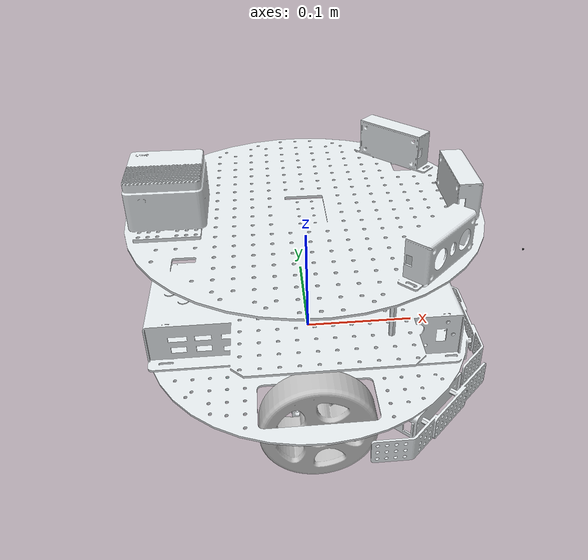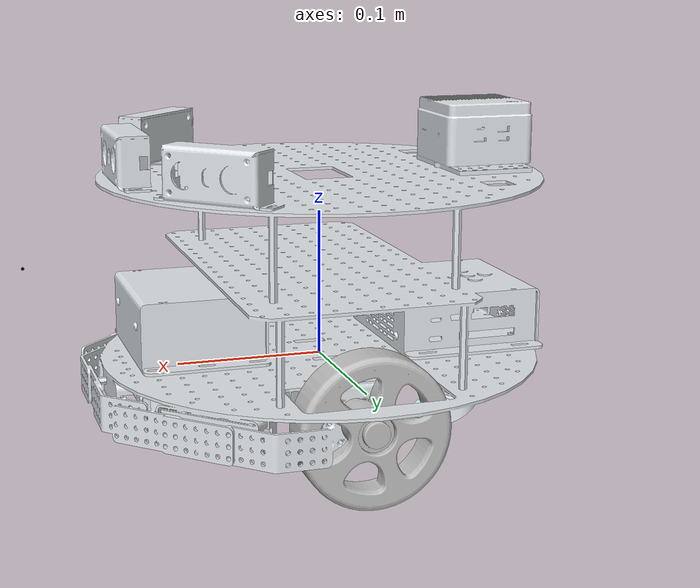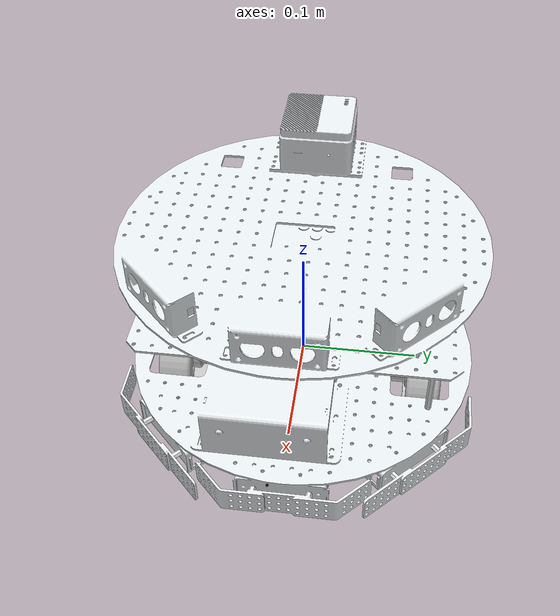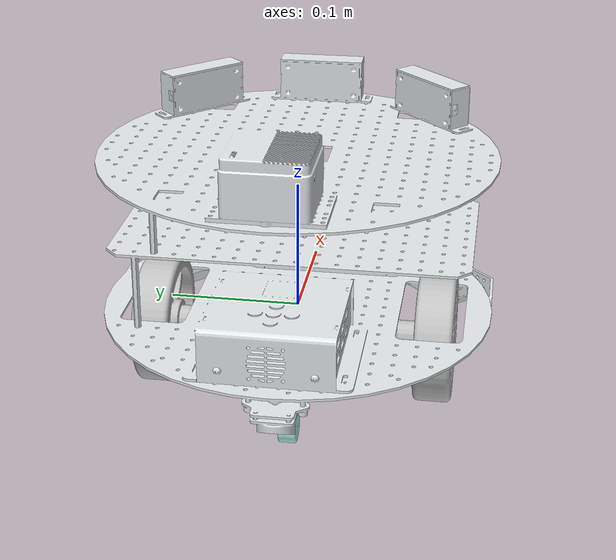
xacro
<?xml version="1.0"?>

<robot name="w2" xmlns:xacro="http://www.ros.org/wiki/xacro">

    <xacro:include filename="$(find upros_description)/xacro/w2_body.xacro" />
    <xacro:include filename="$(find upros_description)/xacro/depth_camera.xacro" />
    <xacro:include filename="$(find upros_description)/xacro/diff_drive_controller.xacro" />

    <xacro:w2_body />
    <xacro:depth_camera prefix="camera"/>
    <xacro:differential_drive_controller />

</robot>

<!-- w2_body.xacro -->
<robot xmlns:xacro="http://www.ros.org/wiki/xacro" name="w2_body">

    <xacro:macro name="w2_body">

        <link name="base_footprint">
        </link>

        <link name="base_link">
            <inertial>
                <origin xyz="-0.00183994912012901 0.000718384784481402 0.040896257051146"
                    rpy="0 0 0" />
                <mass value="2.11446326748896" />
                <inertia ixx="0.0172522550977486" ixy="0.000112962512291742"
                    ixz="0.00215471233797688"
                    iyy="0.0214703513066925" iyz="-3.60344762320202E-05" izz="0.0232865128652866" />
            </inertial>
            <visual>
                <origin xyz="0 0 0" rpy="0 0 0" />
                <geometry>
                    <mesh filename="package://upros_description/meshes/W2C/base_link.STL" />
                </geometry>
                <material name="">
                    <color rgba="0.898039215686275 0.917647058823529 0.929411764705882 1" />
                </material>
            </visual>
            <collision>
                <origin xyz="0 0 0" rpy="0 0 0" />
                <geometry>
                    <mesh filename="package://upros_description/meshes/W2C/base_link.STL" />
                </geometry>
            </collision>
        </link>
        <joint name="base_footprint_joint" type="fixed">
            <parent link="base_footprint" />
            <child link="base_link" />
        </joint>

        <link name="wheel_L_link">
            <inertial>
                <origin xyz="-3.78770996320736E-07 -0.013414250594195 4.81266645289274E-07"
                    rpy="0 0 0" />
                <mass value="0.337836569375269" />
                <inertia ixx="0.000278270805900081" ixy="1.29138084160578E-09"
                    ixz="1.09699819030228E-09" iyy="0.000496405737651082"
                    iyz="-1.64156177606385E-09"
                    izz="0.000278271727426874" />
            </inertial>
            <visual>
                <origin xyz="0 0 0" rpy="0 0 0" />
                <geometry>
                    <mesh filename="package://upros_description/meshes/W2C/wheel_L_link.STL" />
                </geometry>
                <material name="">
                    <color rgba="0.752941176470588 0.752941176470588 0.752941176470588 1" />
                </material>
            </visual>
            <collision>
                <origin xyz="0 0 0" rpy="0 0 0" />
                <geometry>
                    <mesh filename="package://upros_description/meshes/W2C/wheel_L_link.STL" />
                </geometry>
            </collision>
        </link>
        <joint name="wheel_L_joint" type="continuous">
            <origin xyz="0 0.1215 -0.02" rpy="0 0 0" />
            <parent link="base_link" />
            <child link="wheel_L_link" />
            <axis xyz="0 1 0" />
        </joint>

        <link name="wheel_R_link">
            <inertial>
                <origin xyz="-5.54575135339762E-07 0.013414250594195 2.59868179624395E-07"
                    rpy="0 0 0" />
                <mass value="0.337836569375269" />
                <inertia ixx="0.000278271195902002" ixy="-1.89148049635397E-09"
                    ixz="1.18772924132671E-09" iyy="0.000496405737651082" iyz="8.85827903470683E-10"
                    izz="0.000278271337424954" />
            </inertial>
            <visual>
                <origin xyz="0 0 0" rpy="0 0 0" />
                <geometry>
                    <mesh filename="package://upros_description/meshes/W2C/wheel_R_link.STL" />
                </geometry>
                <material name="">
                    <color rgba="0.752941176470588 0.752941176470588 0.752941176470588 1" />
                </material>
            </visual>
            <collision>
                <origin xyz="0 0 0" rpy="0 0 0" />
                <geometry>
                    <mesh filename="package://upros_description/meshes/W2C/wheel_R_link.STL" />
                </geometry>
            </collision>
        </link>
        <joint name="wheel_R_joint" type="continuous">
            <origin xyz="0 -0.1215 -0.02" rpy="0 0 0" />
            <parent link="base_link" />
            <child link="wheel_R_link" />
            <axis xyz="0 1 0" />
        </joint>

        <link name="front_Link">
            <inertial>
                <origin xyz="0 0 0" rpy="0 0 0" />
                <mass value="0.0063074121665526" />
                <inertia ixx="3.34755925557046E-07" ixy="-1.45392467961487E-22"
                    ixz="2.42001994301979E-24" iyy="4.93530086138426E-07" iyz="6.44209161389679E-25"
                    izz="3.34755925557046E-07" />
            </inertial>
            <visual>
                <origin xyz="0 0 0" rpy="0 0 0" />
                <geometry>
                    <mesh filename="package://upros_description/meshes/W2C/wheel_B_Link.STL" />
                </geometry>
                <material name="">
                    <color rgba="0.752941176470588 1 1 1" />
                </material>
            </visual>
            <collision>
                <origin xyz="0 0 0" rpy="0 0 0" />
                <geometry>
                    <mesh filename="package://upros_description/meshes/W2C/wheel_B_Link.STL" />
                </geometry>
            </collision>
        </link>
        <joint name="front_joint" type="continuous">
            <origin xyz="0.0859999999999999 0 -0.0575" rpy="0 0 0" />
            <parent link="base_link" />
            <child link="front_Link" />
            <axis xyz="1 1 1" />
        </joint>

        <link name="back_Link">
            <inertial>
                <origin xyz="0 0 0" rpy="0 0 0" />
                <mass value="0.0063074121665526" />
                <inertia ixx="3.34755925557046E-07" ixy="-1.45392467961487E-22"
                    ixz="2.42001994301979E-24" iyy="4.93530086138426E-07" iyz="6.4420916138968E-25"
                    izz="3.34755925557046E-07" />
            </inertial>
            <visual>
                <origin xyz="0 0 0" rpy="0 0 0" />
                <geometry>
                    <mesh filename="package://upros_description/meshes/W2C/wheel_A_Link.STL" />
                </geometry>
                <material name="">
                    <color rgba="0.752941176470588 1 1 1" />
                </material>
            </visual>
            <collision>
                <origin xyz="0 0 0" rpy="0 0 0" />
                <geometry>
                    <mesh filename="package://upros_description/meshes/W2C/wheel_A_Link.STL" />
                </geometry>
            </collision>
        </link>
        <joint name="back_joint" type="continuous">
            <origin xyz="-0.0859999999999998 0 -0.0575" rpy="0 0 0" />
            <parent link="base_link" />
            <child link="back_Link" />
            <axis xyz="1 1 1" />
        </joint>

    </xacro:macro>

</robot>

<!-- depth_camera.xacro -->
<robot name="depth_camera" xmlns:xacro="http://wiki.ros.org/xacro">

  <!-- 定义相机的基本参数 -->
  <xacro:property name="camera_name" value="camera" />
  <xacro:property name="camera_radius" value="0.001" />
  <xacro:property name="camera_height" value="0.073" />
  <xacro:property name="camera_front" value="0.20" />
  <xacro:property name="horizontal_fov" value="${60.0*3.141592653589793/180.0}" />
  <xacro:property name="image_width" value="640" />
  <xacro:property name="image_height" value="480" />
  <xacro:property name="near_clip" value="0.05" />
  <xacro:property name="far_clip" value="8.0" />
  <xacro:property name="update_rate" value="20.0" />

  <!-- 定义相机的宏 -->
  <xacro:macro name="depth_camera" params="prefix">

    <!-- 声明一个相机的link -->
    <link name="${prefix}_link">
      <visual>
        <geometry>
          <sphere radius="${camera_radius}" />
        </geometry>
        <origin xyz="0 0 0" rpy="0 0 0" />
        <material name="black">
          <color rgba="0 0 0 1" />
        </material>
      </visual>
      <collision>
        <geometry>
          <sphere radius="${camera_radius}" />
        </geometry>
      </collision>
    </link>

    <!-- 相机link与base_link的关节描述 -->
    <joint name="${prefix}_joint" type="fixed">
      <parent link="base_link" />
      <child link="${prefix}_link" />
      <origin xyz="${camera_front} 0 ${camera_height}" rpy="0 0 0" />
    </joint>

    <!-- 相机的gazebo驱动描述 -->
    <gazebo reference="${prefix}_link">
      <sensor type="depth" name="${prefix}">
        <always_on>true</always_on>
        <visualize>false</visualize>
        <update_rate>${update_rate}</update_rate>
        <camera>
          <horizontal_fov>${horizontal_fov}</horizontal_fov>
          <image>
            <width>${image_width}</width>
            <height>${image_height}</height>
            <format>R8G8B8</format>
          </image>
          <clip>
            <near>${near_clip}</near>
            <far>${far_clip}</far>
          </clip>
        </camera>
        <!--plugin为ROS的通信接口-->
        <plugin name="${prefix}_controller" filename="libgazebo_ros_openni_kinect.so">
          <cameraName>${prefix}</cameraName>
          <alwaysOn>true</alwaysOn>
          <updateRate>10</updateRate>
          <imageTopicName>color/image_raw</imageTopicName>
          <depthImageTopicName>depth/image_raw</depthImageTopicName>
          <pointCloudTopicName>depth/points</pointCloudTopicName>
          <cameraInfoTopicName>color/camera_info</cameraInfoTopicName>
          <depthImageCameraInfoTopicName>depth/camera_info</depthImageCameraInfoTopicName>
          <frameName>camera_optical_frame</frameName>
          <baseline>0.1</baseline>
          <distortion_k1>0.0</distortion_k1>
          <distortion_k2>0.0</distortion_k2>
          <distortion_k3>0.0</distortion_k3>
          <distortion_t1>0.0</distortion_t1>
          <distortion_t2>0.0</distortion_t2>
          <pointCloudCutoff>0.4</pointCloudCutoff>
        </plugin>
      </sensor>
    </gazebo>

  </xacro:macro>

</robot>
